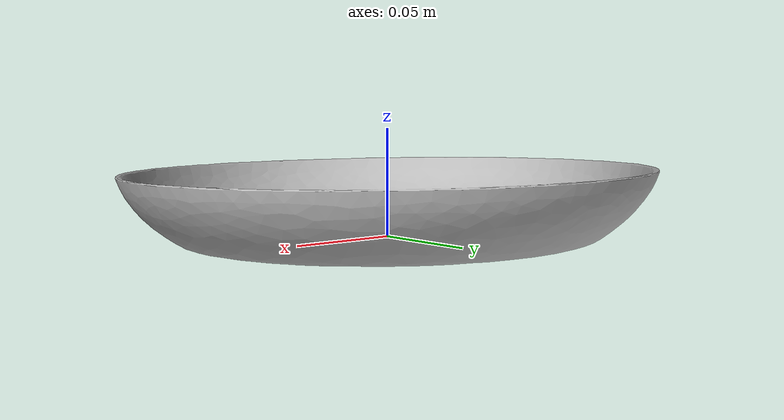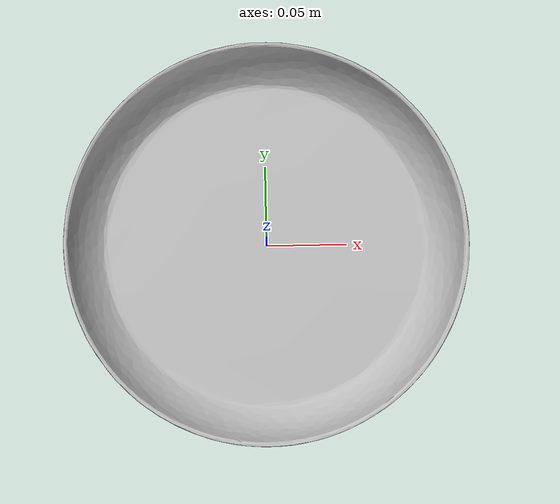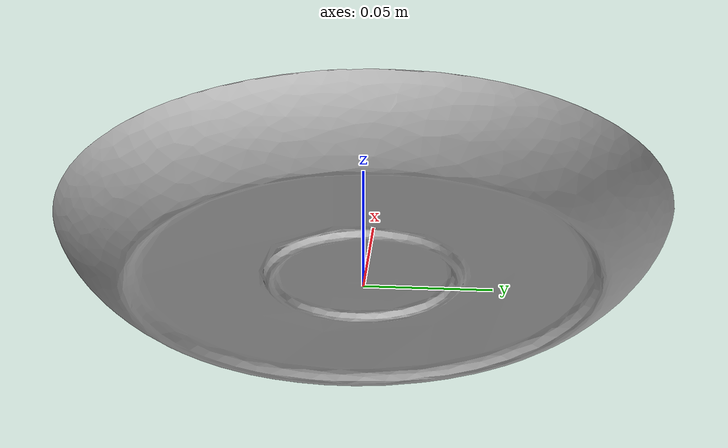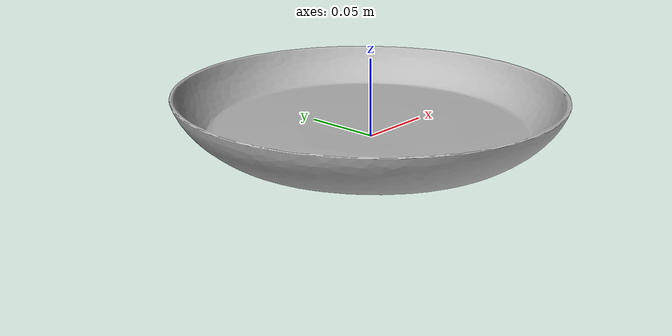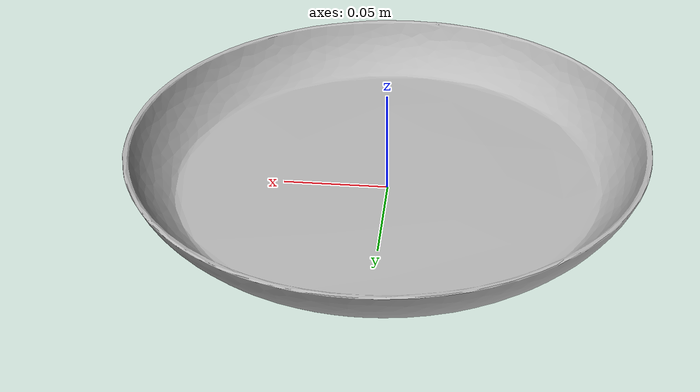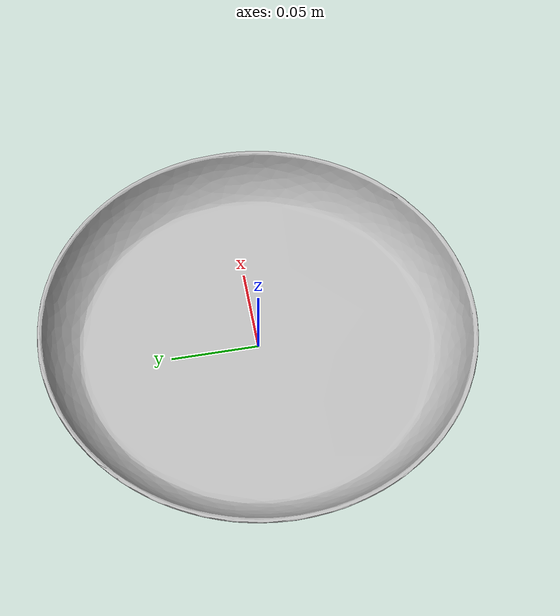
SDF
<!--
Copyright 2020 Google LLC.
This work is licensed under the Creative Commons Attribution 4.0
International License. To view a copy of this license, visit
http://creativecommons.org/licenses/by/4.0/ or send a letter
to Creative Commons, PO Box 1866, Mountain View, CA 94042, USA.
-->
<?xml version="1.0" ?>
<sdf version="1.6">
  <model name="ecoforms_container">
    <link name="link_0">
      <visual name="visual">
        <geometry>
          <mesh>
            <uri>model://ecoforms_container/meshes/model.obj</uri>
          </mesh>
        </geometry>
      </visual>
      <collision name="collision_0">
        <geometry>
          <mesh>
            <uri>model://ecoforms_container/meshes/model.obj</uri>
          </mesh>
        </geometry>
      </collision>
    </link>
  </model>
</sdf>
